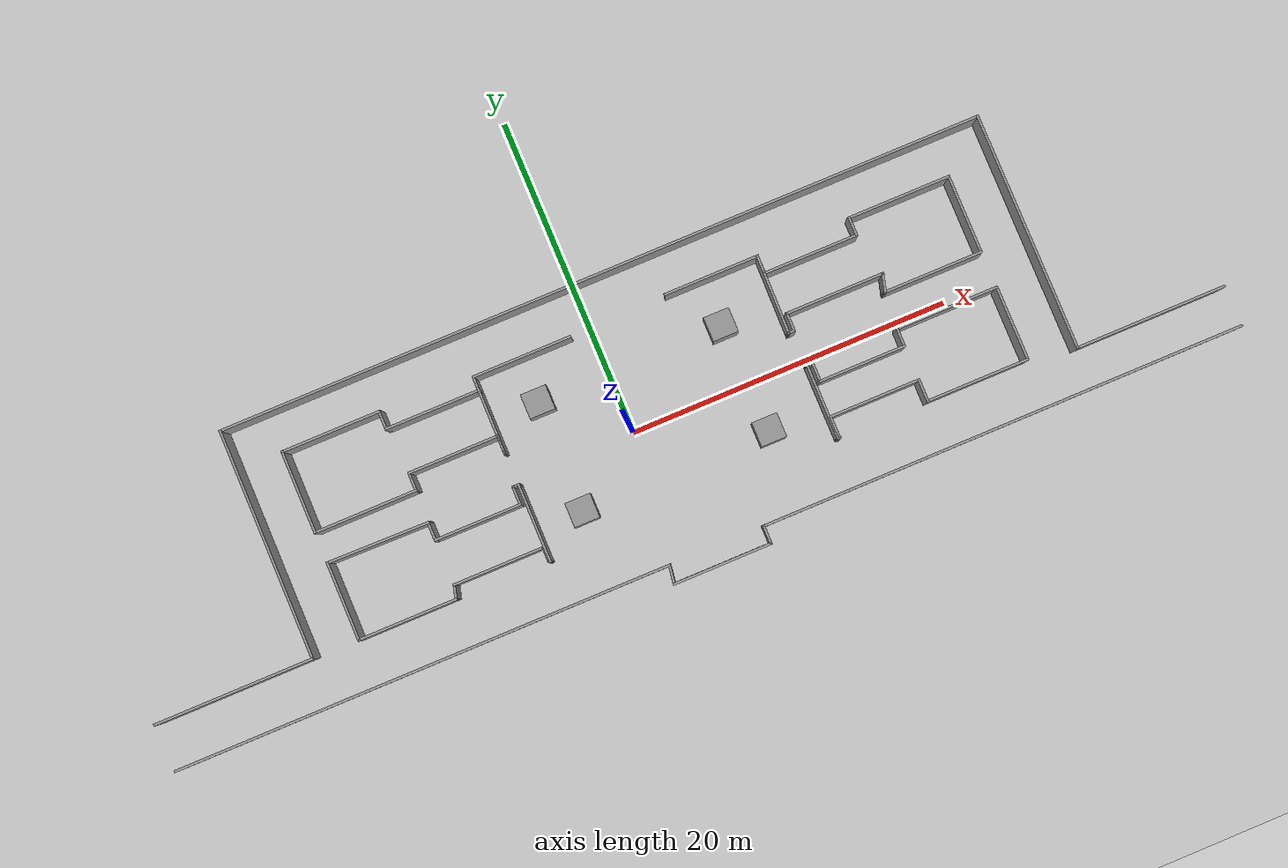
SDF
<sdf version="1.6">
 <world name="default">
  <light name="sun" type="directional">
   <pose>0 0 10 0 -0 0</pose>
   <diffuse>0.8 0.8 0.8 1</diffuse>
   <specular>0.2 0.2 0.2 1</specular>
   <attenuation>
    <range>1000</range>
    <constant>0.9</constant>
    <linear>0.01</linear>
    <quadratic>0.001</quadratic>
   </attenuation>
   <direction>-0.5 0.1 -0.9</direction>
  </light>
  <model name="ground_plane">
   <static>1</static>
   <link name="link">
    <collision name="collision">
     <geometry><plane><normal>0 0 1</normal><size>100 100</size></plane></geometry>
     <surface>
      <contact><collide_bitmask>65535</collide_bitmask></contact>
      <friction><ode><mu>100</mu><mu2>50</mu2></ode></friction>
     </surface>
    </collision>
    <visual name="visual">
     <cast_shadows>0</cast_shadows>
     <geometry><plane><normal>0 0 1</normal><size>100 100</size></plane></geometry>
     <material>
      <script><uri>file://media/materials/scripts/gazebo.material</uri><name>Gazebo/Grey</name></script>
     </material>
    </visual>
   </link>
  </model>
  <gravity>0 0 -9.8</gravity>
  <magnetic_field>6e-06 2.3e-05 -4.2e-05</magnetic_field>
  <atmosphere type="adiabatic"/>
  <physics name="default_physics" default="0" type="ode">
   <max_step_size>0.001</max_step_size>
   <real_time_factor>1</real_time_factor>
   <real_time_update_rate>1000</real_time_update_rate>
  </physics>
  <scene><ambient>0.4 0.4 0.4 1</ambient><background>0.7 0.7 0.7 1</background><shadows>1</shadows></scene>
  <audio><device>default</device></audio>
  <spherical_coordinates>
   <surface_model>EARTH_WGS84</surface_model>
   <latitude_deg>0</latitude_deg>
   <longitude_deg>0</longitude_deg>
   <elevation>0</elevation>
   <heading_deg>0</heading_deg>
  </spherical_coordinates>
  <model name="c5wall">
   <pose>1.5819 -0.00746 0 0 -0 0</pose>
   <link name="Wall_0">
    <collision name="Wall_0_Collision">
     <geometry><box><size>31.0745 0.15 2.5</size></box></geometry>
     <pose>0 0 1.25 0 -0 0</pose>
    </collision>
    <visual name="Wall_0_Visual">
     <pose>0 0 1.25 0 -0 0</pose>
     <geometry><box><size>31.0745 0.15 2.5</size></box></geometry>
     <material>
      <script><uri>file://media/materials/scripts/gazebo.material</uri><name>Gazebo/Grey</name></script>
      <ambient>1 1 1 1</ambient>
     </material>
     <meta><layer>0</layer></meta>
    </visual>
    <pose>-18.0912 -8.07962 0 0 -0 -0.00173</pose>
   </link>
   <link name="Wall_1">
    <collision name="Wall_1_Collision">
     <geometry><box><size>1.28496 0.15 2.5</size></box></geometry>
     <pose>0 0 1.25 0 -0 0</pose>
    </collision>
    <visual name="Wall_1_Visual">
     <pose>0 0 1.25 0 -0 0</pose>
     <geometry><box><size>1.28496 0.15 2.5</size></box></geometry>
     <material>
      <script><uri>file://media/materials/scripts/gazebo.material</uri><name>Gazebo/Grey</name></script>
      <ambient>1 1 1 1</ambient>
     </material>
     <meta><layer>0</layer></meta>
    </visual>
    <pose>-2.70927 -8.66814 0 0 -0 -1.71269</pose>
   </link>
   <link name="Wall_10">
    <collision name="Wall_10_Collision">
     <geometry><box><size>9.5 0.15 2.5</size></box></geometry>
     <pose>0 0 1.25 0 -0 0</pose>
    </collision>
    <visual name="Wall_10_Visual">
     <pose>0 0 1.25 0 -0 0</pose>
     <geometry><box><size>9.5 0.15 2.5</size></box></geometry>
     <material>
      <script><uri>file://media/materials/scripts/gazebo.material</uri><name>Gazebo/Grey</name></script>
      <ambient>1 1 1 1</ambient>
     </material>
     <meta><layer>0</layer></meta>
    </visual>
    <pose>28.9645 -5.61023 0 0 -0 0</pose>
   </link>
   <link name="Wall_12">
    <collision name="Wall_12_Collision">
     <geometry><box><size>6.25 0.15 2.5</size></box></geometry>
     <pose>0 0 1.25 0 -0 0</pose>
    </collision>
    <visual name="Wall_12_Visual">
     <pose>0 0 1.25 0 -0 0</pose>
     <geometry><box><size>6.25 0.15 2.5</size></box></geometry>
     <material>
      <script><uri>file://media/materials/scripts/gazebo.material</uri><name>Gazebo/Grey</name></script>
      <ambient>1 1 1 1</ambient>
     </material>
     <meta><layer>0</layer></meta>
    </visual>
    <pose>-17.8769 6.71382 0 0 -0 0</pose>
   </link>
   <link name="Wall_13">
    <collision name="Wall_13_Collision">
     <geometry><box><size>1.25 0.15 2.5</size></box></geometry>
     <pose>0 0 1.25 0 -0 0</pose>
    </collision>
    <visual name="Wall_13_Visual">
     <pose>0 0 1.25 0 -0 0</pose>
     <geometry><box><size>1.25 0.15 2.5</size></box></geometry>
     <material>
      <script><uri>file://media/materials/scripts/gazebo.material</uri><name>Gazebo/Grey</name></script>
      <ambient>1 1 1 1</ambient>
     </material>
     <meta><layer>0</layer></meta>
    </visual>
    <pose>-14.8269 6.16383 0 0 -0 -1.5708</pose>
   </link>
   <link name="Wall_14">
    <collision name="Wall_14_Collision">
     <geometry><box><size>6 0.15 2.5</size></box></geometry>
     <pose>0 0 1.25 0 -0 0</pose>
    </collision>
    <visual name="Wall_14_Visual">
     <pose>0 0 1.25 0 -0 0</pose>
     <geometry><box><size>6 0.15 2.5</size></box></geometry>
     <material>
      <script><uri>file://media/materials/scripts/gazebo.material</uri><name>Gazebo/Grey</name></script>
      <ambient>1 1 1 1</ambient>
     </material>
     <meta><layer>0</layer></meta>
    </visual>
    <pose>-11.9019 5.61383 0 0 -0 0</pose>
   </link>
   <link name="Wall_15">
    <collision name="Wall_15_Collision">
     <geometry><box><size>1 0.15 2.5</size></box></geometry>
     <pose>0 0 1.25 0 -0 0</pose>
    </collision>
    <visual name="Wall_15_Visual">
     <pose>0 0 1.25 0 -0 0</pose>
     <geometry><box><size>1 0.15 2.5</size></box></geometry>
     <material>
      <script><uri>file://media/materials/scripts/gazebo.material</uri><name>Gazebo/Grey</name></script>
      <ambient>1 1 1 1</ambient>
     </material>
     <meta><layer>0</layer></meta>
    </visual>
    <pose>-8.97688 6.03883 0 0 -0 1.5708</pose>
   </link>
   <link name="Wall_16">
    <collision name="Wall_16_Collision">
     <geometry><box><size>6.25 0.15 2.5</size></box></geometry>
     <pose>0 0 1.25 0 -0 0</pose>
    </collision>
    <visual name="Wall_16_Visual">
     <pose>0 0 1.25 0 -0 0</pose>
     <geometry><box><size>6.25 0.15 2.5</size></box></geometry>
     <material>
      <script><uri>file://media/materials/scripts/gazebo.material</uri><name>Gazebo/Grey</name></script>
      <ambient>1 1 1 1</ambient>
     </material>
     <meta><layer>0</layer></meta>
    </visual>
    <pose>-5.92688 6.46382 0 0 -0 0</pose>
   </link>
   <link name="Wall_18">
    <collision name="Wall_18_Collision">
     <geometry><box><size>6 0.15 2.5</size></box></geometry>
     <pose>0 0 1.25 0 -0 0</pose>
    </collision>
    <visual name="Wall_18_Visual">
     <pose>0 0 1.25 0 -0 0</pose>
     <geometry><box><size>6 0.15 2.5</size></box></geometry>
     <material>
      <script><uri>file://media/materials/scripts/gazebo.material</uri><name>Gazebo/Grey</name></script>
      <ambient>1 1 1 1</ambient>
     </material>
     <meta><layer>0</layer></meta>
    </visual>
    <pose>6.18126 6.60682 0 0 -0 0</pose>
   </link>
   <link name="Wall_19">
    <collision name="Wall_19_Collision">
     <geometry><box><size>1.25 0.15 2.5</size></box></geometry>
     <pose>0 0 1.25 0 -0 0</pose>
    </collision>
    <visual name="Wall_19_Visual">
     <pose>0 0 1.25 0 -0 0</pose>
     <geometry><box><size>1.25 0.15 2.5</size></box></geometry>
     <material>
      <script><uri>file://media/materials/scripts/gazebo.material</uri><name>Gazebo/Grey</name></script>
      <ambient>1 1 1 1</ambient>
     </material>
     <meta><layer>0</layer></meta>
    </visual>
    <pose>9.10626 6.05682 0 0 -0 -1.5708</pose>
   </link>
   <link name="Wall_2">
    <collision name="Wall_2_Collision">
     <geometry><box><size>6.25 0.15 2.5</size></box></geometry>
     <pose>0 0 1.25 0 -0 0</pose>
    </collision>
    <visual name="Wall_2_Visual">
     <pose>0 0 1.25 0 -0 0</pose>
     <geometry><box><size>6.25 0.15 2.5</size></box></geometry>
     <material>
      <script><uri>file://media/materials/scripts/gazebo.material</uri><name>Gazebo/Grey</name></script>
      <ambient>1 1 1 1</ambient>
     </material>
     <meta><layer>0</layer></meta>
    </visual>
    <pose>0.260472 -9.22992 0 0 -0 0</pose>
   </link>
   <link name="Wall_20">
    <collision name="Wall_20_Collision">
     <geometry><box><size>6 0.15 2.5</size></box></geometry>
     <pose>0 0 1.25 0 -0 0</pose>
    </collision>
    <visual name="Wall_20_Visual">
     <pose>0 0 1.25 0 -0 0</pose>
     <geometry><box><size>6 0.15 2.5</size></box></geometry>
     <material>
      <script><uri>file://media/materials/scripts/gazebo.material</uri><name>Gazebo/Grey</name></script>
      <ambient>1 1 1 1</ambient>
     </material>
     <meta><layer>0</layer></meta>
    </visual>
    <pose>12.0313 5.50682 0 0 -0 0</pose>
   </link>
   <link name="Wall_21">
    <collision name="Wall_21_Collision">
     <geometry><box><size>1.25 0.15 2.5</size></box></geometry>
     <pose>0 0 1.25 0 -0 0</pose>
    </collision>
    <visual name="Wall_21_Visual">
     <pose>0 0 1.25 0 -0 0</pose>
     <geometry><box><size>1.25 0.15 2.5</size></box></geometry>
     <material>
      <script><uri>file://media/materials/scripts/gazebo.material</uri><name>Gazebo/Grey</name></script>
      <ambient>1 1 1 1</ambient>
     </material>
     <meta><layer>0</layer></meta>
    </visual>
    <pose>14.9563 6.05682 0 0 -0 1.5708</pose>
   </link>
   <link name="Wall_22">
    <collision name="Wall_22_Collision">
     <geometry><box><size>6.5 0.15 2.5</size></box></geometry>
     <pose>0 0 1.25 0 -0 0</pose>
    </collision>
    <visual name="Wall_22_Visual">
     <pose>0 0 1.25 0 -0 0</pose>
     <geometry><box><size>6.5 0.15 2.5</size></box></geometry>
     <material>
      <script><uri>file://media/materials/scripts/gazebo.material</uri><name>Gazebo/Grey</name></script>
      <ambient>1 1 1 1</ambient>
     </material>
     <meta><layer>0</layer></meta>
    </visual>
    <pose>18.1313 6.60682 0 0 -0 0</pose>
   </link>
   <link name="Wall_23">
    <collision name="Wall_23_Collision">
     <geometry><box><size>5 0.15 2.5</size></box></geometry>
     <pose>0 0 1.25 0 -0 0</pose>
    </collision>
    <visual name="Wall_23_Visual">
     <pose>0 0 1.25 0 -0 0</pose>
     <geometry><box><size>5 0.15 2.5</size></box></geometry>
     <material>
      <script><uri>file://media/materials/scripts/gazebo.material</uri><name>Gazebo/Grey</name></script>
      <ambient>1 1 1 1</ambient>
     </material>
     <meta><layer>0</layer></meta>
    </visual>
    <pose>21.3063 4.18182 0 0 -0 -1.5708</pose>
   </link>
   <link name="Wall_24">
    <collision name="Wall_24_Collision">
     <geometry><box><size>6.25 0.15 2.5</size></box></geometry>
     <pose>0 0 1.25 0 -0 0</pose>
    </collision>
    <visual name="Wall_24_Visual">
     <pose>0 0 1.25 0 -0 0</pose>
     <geometry><box><size>6.25 0.15 2.5</size></box></geometry>
     <material>
      <script><uri>file://media/materials/scripts/gazebo.material</uri><name>Gazebo/Grey</name></script>
      <ambient>1 1 1 1</ambient>
     </material>
     <meta><layer>0</layer></meta>
    </visual>
    <pose>18.2563 1.75682 0 0 -0 3.14159</pose>
   </link>
   <link name="Wall_25">
    <collision name="Wall_25_Collision">
     <geometry><box><size>1.25 0.15 2.5</size></box></geometry>
     <pose>0 0 1.25 0 -0 0</pose>
    </collision>
    <visual name="Wall_25_Visual">
     <pose>0 0 1.25 0 -0 0</pose>
     <geometry><box><size>1.25 0.15 2.5</size></box></geometry>
     <material>
      <script><uri>file://media/materials/scripts/gazebo.material</uri><name>Gazebo/Grey</name></script>
      <ambient>1 1 1 1</ambient>
     </material>
     <meta><layer>0</layer></meta>
    </visual>
    <pose>15.3486 2.28808 0 0 -0 1.309</pose>
   </link>
   <link name="Wall_26">
    <collision name="Wall_26_Collision">
     <geometry><box><size>6.25 0.15 2.5</size></box></geometry>
     <pose>0 0 1.25 0 -0 0</pose>
    </collision>
    <visual name="Wall_26_Visual">
     <pose>0 0 1.25 0 -0 0</pose>
     <geometry><box><size>6.25 0.15 2.5</size></box></geometry>
     <material>
      <script><uri>file://media/materials/scripts/gazebo.material</uri><name>Gazebo/Grey</name></script>
      <ambient>1 1 1 1</ambient>
     </material>
     <meta><layer>0</layer></meta>
    </visual>
    <pose>12.441 2.81934 0 0 -0 3.14159</pose>
   </link>
   <link name="Wall_27">
    <collision name="Wall_27_Collision">
     <geometry><box><size>1.25 0.15 2.5</size></box></geometry>
     <pose>0 0 1.25 0 -0 0</pose>
    </collision>
    <visual name="Wall_27_Visual">
     <pose>0 0 1.25 0 -0 0</pose>
     <geometry><box><size>1.25 0.15 2.5</size></box></geometry>
     <material>
      <script><uri>file://media/materials/scripts/gazebo.material</uri><name>Gazebo/Grey</name></script>
      <ambient>1 1 1 1</ambient>
     </material>
     <meta><layer>0</layer></meta>
    </visual>
    <pose>9.39096 2.26934 0 0 -0 -1.5708</pose>
   </link>
   <link name="Wall_28">
    <collision name="Wall_28_Collision">
     <geometry><box><size>0.5 0.15 2.5</size></box></geometry>
     <pose>0 0 1.25 0 -0 0</pose>
    </collision>
    <visual name="Wall_28_Visual">
     <pose>0 0 1.25 0 -0 0</pose>
     <geometry><box><size>0.5 0.15 2.5</size></box></geometry>
     <material>
      <script><uri>file://media/materials/scripts/gazebo.material</uri><name>Gazebo/Grey</name></script>
      <ambient>1 1 1 1</ambient>
     </material>
     <meta><layer>0</layer></meta>
    </visual>
    <pose>9.21596 1.71934 0 0 -0 3.14159</pose>
   </link>
   <link name="Wall_29">
    <collision name="Wall_29_Collision">
     <geometry><box><size>5.03792 0.15 2.5</size></box></geometry>
     <pose>0 0 1.25 0 -0 0</pose>
    </collision>
    <visual name="Wall_29_Visual">
     <pose>0 0 1.25 0 -0 0</pose>
     <geometry><box><size>5.03792 0.15 2.5</size></box></geometry>
     <material>
      <script><uri>file://media/materials/scripts/gazebo.material</uri><name>Gazebo/Grey</name></script>
      <ambient>1 1 1 1</ambient>
     </material>
     <meta><layer>0</layer></meta>
    </visual>
    <pose>9.07361 4.16308 0 0 -0 1.55744</pose>
   </link>
   <link name="Wall_3">
    <collision name="Wall_3_Collision">
     <geometry><box><size>1.25 0.15 2.5</size></box></geometry>
     <pose>0 0 1.25 0 -0 0</pose>
    </collision>
    <visual name="Wall_3_Visual">
     <pose>0 0 1.25 0 -0 0</pose>
     <geometry><box><size>1.25 0.15 2.5</size></box></geometry>
     <material>
      <script><uri>file://media/materials/scripts/gazebo.material</uri><name>Gazebo/Grey</name></script>
      <ambient>1 1 1 1</ambient>
     </material>
     <meta><layer>0</layer></meta>
    </visual>
    <pose>3.31047 -8.67992 0 0 -0 1.5708</pose>
   </link>
   <link name="Wall_31">
    <collision name="Wall_31_Collision">
     <geometry><box><size>5.25 0.15 2.5</size></box></geometry>
     <pose>0 0 1.25 0 -0 0</pose>
    </collision>
    <visual name="Wall_31_Visual">
     <pose>0 0 1.25 0 -0 0</pose>
     <geometry><box><size>5.25 0.15 2.5</size></box></geometry>
     <material>
      <script><uri>file://media/materials/scripts/gazebo.material</uri><name>Gazebo/Grey</name></script>
      <ambient>1 1 1 1</ambient>
     </material>
     <meta><layer>0</layer></meta>
    </visual>
    <pose>-20.9269 4.16383 0 0 -0 -1.5708</pose>
   </link>
   <link name="Wall_32">
    <collision name="Wall_32_Collision">
     <geometry><box><size>6.5 0.15 2.5</size></box></geometry>
     <pose>0 0 1.25 0 -0 0</pose>
    </collision>
    <visual name="Wall_32_Visual">
     <pose>0 0 1.25 0 -0 0</pose>
     <geometry><box><size>6.5 0.15 2.5</size></box></geometry>
     <material>
      <script><uri>file://media/materials/scripts/gazebo.material</uri><name>Gazebo/Grey</name></script>
      <ambient>1 1 1 1</ambient>
     </material>
     <meta><layer>0</layer></meta>
    </visual>
    <pose>-17.7519 1.61383 0 0 -0 0</pose>
   </link>
   <link name="Wall_33">
    <collision name="Wall_33_Collision">
     <geometry><box><size>1.25 0.15 2.5</size></box></geometry>
     <pose>0 0 1.25 0 -0 0</pose>
    </collision>
    <visual name="Wall_33_Visual">
     <pose>0 0 1.25 0 -0 0</pose>
     <geometry><box><size>1.25 0.15 2.5</size></box></geometry>
     <material>
      <script><uri>file://media/materials/scripts/gazebo.material</uri><name>Gazebo/Grey</name></script>
      <ambient>1 1 1 1</ambient>
     </material>
     <meta><layer>0</layer></meta>
    </visual>
    <pose>-14.5769 2.16383 0 0 -0 1.5708</pose>
   </link>
   <link name="Wall_34">
    <collision name="Wall_34_Collision">
     <geometry><box><size>5.75 0.15 2.5</size></box></geometry>
     <pose>0 0 1.25 0 -0 0</pose>
    </collision>
    <visual name="Wall_34_Visual">
     <pose>0 0 1.25 0 -0 0</pose>
     <geometry><box><size>5.75 0.15 2.5</size></box></geometry>
     <material>
      <script><uri>file://media/materials/scripts/gazebo.material</uri><name>Gazebo/Grey</name></script>
      <ambient>1 1 1 1</ambient>
     </material>
     <meta><layer>0</layer></meta>
    </visual>
    <pose>-11.7769 2.71382 0 0 -0 0</pose>
   </link>
   <link name="Wall_35">
    <collision name="Wall_35_Collision">
     <geometry><box><size>1.25 0.15 2.5</size></box></geometry>
     <pose>0 0 1.25 0 -0 0</pose>
    </collision>
    <visual name="Wall_35_Visual">
     <pose>0 0 1.25 0 -0 0</pose>
     <geometry><box><size>1.25 0.15 2.5</size></box></geometry>
     <material>
      <script><uri>file://media/materials/scripts/gazebo.material</uri><name>Gazebo/Grey</name></script>
      <ambient>1 1 1 1</ambient>
     </material>
     <meta><layer>0</layer></meta>
    </visual>
    <pose>-8.97688 2.16383 0 0 -0 -1.5708</pose>
   </link>
   <link name="Wall_36">
    <collision name="Wall_36_Collision">
     <geometry><box><size>0.15 0.15 2.5</size></box></geometry>
     <pose>0 0 1.25 0 -0 0</pose>
    </collision>
    <visual name="Wall_36_Visual">
     <pose>0 0 1.25 0 -0 0</pose>
     <geometry><box><size>0.15 0.15 2.5</size></box></geometry>
     <material>
      <script><uri>file://media/materials/scripts/gazebo.material</uri><name>Gazebo/Grey</name></script>
      <ambient>1 1 1 1</ambient>
     </material>
     <meta><layer>0</layer></meta>
    </visual>
    <pose>-8.97688 1.61383 0 0 -0 0</pose>
   </link>
   <link name="Wall_37">
    <collision name="Wall_37_Collision">
     <geometry><box><size>5 0.15 2.5</size></box></geometry>
     <pose>0 0 1.25 0 -0 0</pose>
    </collision>
    <visual name="Wall_37_Visual">
     <pose>0 0 1.25 0 -0 0</pose>
     <geometry><box><size>5 0.15 2.5</size></box></geometry>
     <material>
      <script><uri>file://media/materials/scripts/gazebo.material</uri><name>Gazebo/Grey</name></script>
      <ambient>1 1 1 1</ambient>
     </material>
     <meta><layer>0</layer></meta>
    </visual>
    <pose>-8.97688 4.03883 0 0 -0 1.5708</pose>
   </link>
   <link name="Wall_39">
    <collision name="Wall_39_Collision">
     <geometry><box><size>5 0.15 2.5</size></box></geometry>
     <pose>0 0 1.25 0 -0 0</pose>
    </collision>
    <visual name="Wall_39_Visual">
     <pose>0 0 1.25 0 -0 0</pose>
     <geometry><box><size>5 0.15 2.5</size></box></geometry>
     <material>
      <script><uri>file://media/materials/scripts/gazebo.material</uri><name>Gazebo/Grey</name></script>
      <ambient>1 1 1 1</ambient>
     </material>
     <meta><layer>0</layer></meta>
    </visual>
    <pose>-20.9269 -2.72 0 0 -0 -1.5708</pose>
   </link>
   <link name="Wall_4">
    <collision name="Wall_4_Collision">
     <geometry><box><size>30.5 0.15 2.5</size></box></geometry>
     <pose>0 0 1.25 0 -0 0</pose>
    </collision>
    <visual name="Wall_4_Visual">
     <pose>0 0 1.25 0 -0 0</pose>
     <geometry><box><size>30.5 0.15 2.5</size></box></geometry>
     <material>
      <script><uri>file://media/materials/scripts/gazebo.material</uri><name>Gazebo/Grey</name></script>
      <ambient>1 1 1 1</ambient>
     </material>
     <meta><layer>0</layer></meta>
    </visual>
    <pose>18.4855 -8.12992 0 0 -0 0</pose>
   </link>
   <link name="Wall_40">
    <collision name="Wall_40_Collision">
     <geometry><box><size>6.25 0.15 2.5</size></box></geometry>
     <pose>0 0 1.25 0 -0 0</pose>
    </collision>
    <visual name="Wall_40_Visual">
     <pose>0 0 1.25 0 -0 0</pose>
     <geometry><box><size>6.25 0.15 2.5</size></box></geometry>
     <material>
      <script><uri>file://media/materials/scripts/gazebo.material</uri><name>Gazebo/Grey</name></script>
      <ambient>1 1 1 1</ambient>
     </material>
     <meta><layer>0</layer></meta>
    </visual>
    <pose>-17.8769 -5.145 0 0 -0 0</pose>
   </link>
   <link name="Wall_41">
    <collision name="Wall_41_Collision">
     <geometry><box><size>1 0.15 2.5</size></box></geometry>
     <pose>0 0 1.25 0 -0 0</pose>
    </collision>
    <visual name="Wall_41_Visual">
     <pose>0 0 1.25 0 -0 0</pose>
     <geometry><box><size>1 0.15 2.5</size></box></geometry>
     <material>
      <script><uri>file://media/materials/scripts/gazebo.material</uri><name>Gazebo/Grey</name></script>
      <ambient>1 1 1 1</ambient>
     </material>
     <meta><layer>0</layer></meta>
    </visual>
    <pose>-14.7169 -4.73448 0 0 -0 1.309</pose>
   </link>
   <link name="Wall_42">
    <collision name="Wall_42_Collision">
     <geometry><box><size>5.75 0.15 2.5</size></box></geometry>
     <pose>0 0 1.25 0 -0 0</pose>
    </collision>
    <visual name="Wall_42_Visual">
     <pose>0 0 1.25 0 -0 0</pose>
     <geometry><box><size>5.75 0.15 2.5</size></box></geometry>
     <material>
      <script><uri>file://media/materials/scripts/gazebo.material</uri><name>Gazebo/Grey</name></script>
      <ambient>1 1 1 1</ambient>
     </material>
     <meta><layer>0</layer></meta>
    </visual>
    <pose>-11.8069 -4.32397 0 0 -0 0</pose>
   </link>
   <link name="Wall_43">
    <collision name="Wall_43_Collision">
     <geometry><box><size>1 0.15 2.5</size></box></geometry>
     <pose>0 0 1.25 0 -0 0</pose>
    </collision>
    <visual name="Wall_43_Visual">
     <pose>0 0 1.25 0 -0 0</pose>
     <geometry><box><size>1 0.15 2.5</size></box></geometry>
     <material>
      <script><uri>file://media/materials/scripts/gazebo.material</uri><name>Gazebo/Grey</name></script>
      <ambient>1 1 1 1</ambient>
     </material>
     <meta><layer>0</layer></meta>
    </visual>
    <pose>-9.00688 -4.74897 0 0 -0 -1.5708</pose>
   </link>
   <link name="Wall_44">
    <collision name="Wall_44_Collision">
     <geometry><box><size>0.25 0.15 2.5</size></box></geometry>
     <pose>0 0 1.25 0 -0 0</pose>
    </collision>
    <visual name="Wall_44_Visual">
     <pose>0 0 1.25 0 -0 0</pose>
     <geometry><box><size>0.25 0.15 2.5</size></box></geometry>
     <material>
      <script><uri>file://media/materials/scripts/gazebo.material</uri><name>Gazebo/Grey</name></script>
      <ambient>1 1 1 1</ambient>
     </material>
     <meta><layer>0</layer></meta>
    </visual>
    <pose>-8.97152 -5.20932 0 0 -0 -0.785398</pose>
   </link>
   <link name="Wall_45">
    <collision name="Wall_45_Collision">
     <geometry><box><size>5 0.15 2.5</size></box></geometry>
     <pose>0 0 1.25 0 -0 0</pose>
    </collision>
    <visual name="Wall_45_Visual">
     <pose>0 0 1.25 0 -0 0</pose>
     <geometry><box><size>5 0.15 2.5</size></box></geometry>
     <material>
      <script><uri>file://media/materials/scripts/gazebo.material</uri><name>Gazebo/Grey</name></script>
      <ambient>1 1 1 1</ambient>
     </material>
     <meta><layer>0</layer></meta>
    </visual>
    <pose>-8.93617 -2.81968 0 0 -0 1.5708</pose>
   </link>
   <link name="Wall_46">
    <collision name="Wall_46_Collision">
     <geometry><box><size>0.5 0.15 2.5</size></box></geometry>
     <pose>0 0 1.25 0 -0 0</pose>
    </collision>
    <visual name="Wall_46_Visual">
     <pose>0 0 1.25 0 -0 0</pose>
     <geometry><box><size>0.5 0.15 2.5</size></box></geometry>
     <material>
      <script><uri>file://media/materials/scripts/gazebo.material</uri><name>Gazebo/Grey</name></script>
      <ambient>1 1 1 1</ambient>
     </material>
     <meta><layer>0</layer></meta>
    </visual>
    <pose>-9.11117 -0.394676 0 0 -0 3.14159</pose>
   </link>
   <link name="Wall_47">
    <collision name="Wall_47_Collision">
     <geometry><box><size>1.25 0.15 2.5</size></box></geometry>
     <pose>0 0 1.25 0 -0 0</pose>
    </collision>
    <visual name="Wall_47_Visual">
     <pose>0 0 1.25 0 -0 0</pose>
     <geometry><box><size>1.25 0.15 2.5</size></box></geometry>
     <material>
      <script><uri>file://media/materials/scripts/gazebo.material</uri><name>Gazebo/Grey</name></script>
      <ambient>1 1 1 1</ambient>
     </material>
     <meta><layer>0</layer></meta>
    </visual>
    <pose>-9.28617 -0.944676 0 0 -0 -1.5708</pose>
   </link>
   <link name="Wall_48">
    <collision name="Wall_48_Collision">
     <geometry><box><size>5.5 0.15 2.5</size></box></geometry>
     <pose>0 0 1.25 0 -0 0</pose>
    </collision>
    <visual name="Wall_48_Visual">
     <pose>0 0 1.25 0 -0 0</pose>
     <geometry><box><size>5.5 0.15 2.5</size></box></geometry>
     <material>
      <script><uri>file://media/materials/scripts/gazebo.material</uri><name>Gazebo/Grey</name></script>
      <ambient>1 1 1 1</ambient>
     </material>
     <meta><layer>0</layer></meta>
    </visual>
    <pose>-11.9612 -1.49468 0 0 -0 3.14159</pose>
   </link>
   <link name="Wall_49">
    <collision name="Wall_49_Collision">
     <geometry><box><size>1.25 0.15 2.5</size></box></geometry>
     <pose>0 0 1.25 0 -0 0</pose>
    </collision>
    <visual name="Wall_49_Visual">
     <pose>0 0 1.25 0 -0 0</pose>
     <geometry><box><size>1.25 0.15 2.5</size></box></geometry>
     <material>
      <script><uri>file://media/materials/scripts/gazebo.material</uri><name>Gazebo/Grey</name></script>
      <ambient>1 1 1 1</ambient>
     </material>
     <meta><layer>0</layer></meta>
    </visual>
    <pose>-14.6362 -0.944676 0 0 -0 1.5708</pose>
   </link>
   <link name="Wall_50">
    <collision name="Wall_50_Collision">
     <geometry><box><size>6.4415 0.15 2.5</size></box></geometry>
     <pose>0 0 1.25 0 -0 0</pose>
    </collision>
    <visual name="Wall_50_Visual">
     <pose>0 0 1.25 0 -0 0</pose>
     <geometry><box><size>6.4415 0.15 2.5</size></box></geometry>
     <material>
      <script><uri>file://media/materials/scripts/gazebo.material</uri><name>Gazebo/Grey</name></script>
      <ambient>1 1 1 1</ambient>
     </material>
     <meta><layer>0</layer></meta>
    </visual>
    <pose>-17.7815 -0.34484 0 0 -0 3.12575</pose>
   </link>
   <link name="Wall_53">
    <collision name="Wall_53_Collision">
     <geometry><box><size>4.75 0.15 2.5</size></box></geometry>
     <pose>0 0 1.25 0 -0 0</pose>
    </collision>
    <visual name="Wall_53_Visual">
     <pose>0 0 1.25 0 -0 0</pose>
     <geometry><box><size>4.75 0.15 2.5</size></box></geometry>
     <material>
      <script><uri>file://media/materials/scripts/gazebo.material</uri><name>Gazebo/Grey</name></script>
      <ambient>1 1 1 1</ambient>
     </material>
     <meta><layer>0</layer></meta>
    </visual>
    <pose>9.30204 -2.75551 0 0 -0 -1.5708</pose>
   </link>
   <link name="Wall_54">
    <collision name="Wall_54_Collision">
     <geometry><box><size>0.25 0.15 2.5</size></box></geometry>
     <pose>0 0 1.25 0 -0 0</pose>
    </collision>
    <visual name="Wall_54_Visual">
     <pose>0 0 1.25 0 -0 0</pose>
     <geometry><box><size>0.25 0.15 2.5</size></box></geometry>
     <material>
      <script><uri>file://media/materials/scripts/gazebo.material</uri><name>Gazebo/Grey</name></script>
      <ambient>1 1 1 1</ambient>
     </material>
     <meta><layer>0</layer></meta>
    </visual>
    <pose>9.34534 -5.08051 0 0 -0 -0.523599</pose>
   </link>
   <link name="Wall_55">
    <collision name="Wall_55_Collision">
     <geometry><box><size>1.5 0.15 2.5</size></box></geometry>
     <pose>0 0 1.25 0 -0 0</pose>
    </collision>
    <visual name="Wall_55_Visual">
     <pose>0 0 1.25 0 -0 0</pose>
     <geometry><box><size>1.5 0.15 2.5</size></box></geometry>
     <material>
      <script><uri>file://media/materials/scripts/gazebo.material</uri><name>Gazebo/Grey</name></script>
      <ambient>1 1 1 1</ambient>
     </material>
     <meta><layer>0</layer></meta>
    </visual>
    <pose>9.38864 -4.43051 0 0 -0 1.5708</pose>
   </link>
   <link name="Wall_56">
    <collision name="Wall_56_Collision">
     <geometry><box><size>5.75 0.15 2.5</size></box></geometry>
     <pose>0 0 1.25 0 -0 0</pose>
    </collision>
    <visual name="Wall_56_Visual">
     <pose>0 0 1.25 0 -0 0</pose>
     <geometry><box><size>5.75 0.15 2.5</size></box></geometry>
     <material>
      <script><uri>file://media/materials/scripts/gazebo.material</uri><name>Gazebo/Grey</name></script>
      <ambient>1 1 1 1</ambient>
     </material>
     <meta><layer>0</layer></meta>
    </visual>
    <pose>12.1886 -3.75551 0 0 -0 0</pose>
   </link>
   <link name="Wall_57">
    <collision name="Wall_57_Collision">
     <geometry><box><size>1.5 0.15 2.5</size></box></geometry>
     <pose>0 0 1.25 0 -0 0</pose>
    </collision>
    <visual name="Wall_57_Visual">
     <pose>0 0 1.25 0 -0 0</pose>
     <geometry><box><size>1.5 0.15 2.5</size></box></geometry>
     <material>
      <script><uri>file://media/materials/scripts/gazebo.material</uri><name>Gazebo/Grey</name></script>
      <ambient>1 1 1 1</ambient>
     </material>
     <meta><layer>0</layer></meta>
    </visual>
    <pose>14.9886 -4.43051 0 0 -0 -1.5708</pose>
   </link>
   <link name="Wall_58">
    <collision name="Wall_58_Collision">
     <geometry><box><size>6.5 0.15 2.5</size></box></geometry>
     <pose>0 0 1.25 0 -0 0</pose>
    </collision>
    <visual name="Wall_58_Visual">
     <pose>0 0 1.25 0 -0 0</pose>
     <geometry><box><size>6.5 0.15 2.5</size></box></geometry>
     <material>
      <script><uri>file://media/materials/scripts/gazebo.material</uri><name>Gazebo/Grey</name></script>
      <ambient>1 1 1 1</ambient>
     </material>
     <meta><layer>0</layer></meta>
    </visual>
    <pose>18.1636 -5.10551 0 0 -0 0</pose>
   </link>
   <link name="Wall_59">
    <collision name="Wall_59_Collision">
     <geometry><box><size>4.75 0.15 2.5</size></box></geometry>
     <pose>0 0 1.25 0 -0 0</pose>
    </collision>
    <visual name="Wall_59_Visual">
     <pose>0 0 1.25 0 -0 0</pose>
     <geometry><box><size>4.75 0.15 2.5</size></box></geometry>
     <material>
      <script><uri>file://media/materials/scripts/gazebo.material</uri><name>Gazebo/Grey</name></script>
      <ambient>1 1 1 1</ambient>
     </material>
     <meta><layer>0</layer></meta>
    </visual>
    <pose>21.3386 -2.80551 0 0 -0 1.5708</pose>
   </link>
   <link name="Wall_6">
    <collision name="Wall_6_Collision">
     <geometry><box><size>10 0.15 2.5</size></box></geometry>
     <pose>0 0 1.25 0 -0 0</pose>
    </collision>
    <visual name="Wall_6_Visual">
     <pose>0 0 1.25 0 -0 0</pose>
     <geometry><box><size>10 0.15 2.5</size></box></geometry>
     <material>
      <script><uri>file://media/materials/scripts/gazebo.material</uri><name>Gazebo/Grey</name></script>
      <ambient>1 1 1 1</ambient>
     </material>
     <meta><layer>0</layer></meta>
    </visual>
    <pose>-28.7355 -5.11023 0 0 -0 0</pose>
   </link>
   <link name="Wall_60">
    <collision name="Wall_60_Collision">
     <geometry><box><size>6.5 0.15 2.5</size></box></geometry>
     <pose>0 0 1.25 0 -0 0</pose>
    </collision>
    <visual name="Wall_60_Visual">
     <pose>0 0 1.25 0 -0 0</pose>
     <geometry><box><size>6.5 0.15 2.5</size></box></geometry>
     <material>
      <script><uri>file://media/materials/scripts/gazebo.material</uri><name>Gazebo/Grey</name></script>
      <ambient>1 1 1 1</ambient>
     </material>
     <meta><layer>0</layer></meta>
    </visual>
    <pose>18.1636 -0.50551 0 0 -0 3.14159</pose>
   </link>
   <link name="Wall_61">
    <collision name="Wall_61_Collision">
     <geometry><box><size>1.25 0.15 2.5</size></box></geometry>
     <pose>0 0 1.25 0 -0 0</pose>
    </collision>
    <visual name="Wall_61_Visual">
     <pose>0 0 1.25 0 -0 0</pose>
     <geometry><box><size>1.25 0.15 2.5</size></box></geometry>
     <material>
      <script><uri>file://media/materials/scripts/gazebo.material</uri><name>Gazebo/Grey</name></script>
      <ambient>1 1 1 1</ambient>
     </material>
     <meta><layer>0</layer></meta>
    </visual>
    <pose>14.9886 -1.05551 0 0 -0 -1.5708</pose>
   </link>
   <link name="Wall_62">
    <collision name="Wall_62_Collision">
     <geometry><box><size>5.5 0.15 2.5</size></box></geometry>
     <pose>0 0 1.25 0 -0 0</pose>
    </collision>
    <visual name="Wall_62_Visual">
     <pose>0 0 1.25 0 -0 0</pose>
     <geometry><box><size>5.5 0.15 2.5</size></box></geometry>
     <material>
      <script><uri>file://media/materials/scripts/gazebo.material</uri><name>Gazebo/Grey</name></script>
      <ambient>1 1 1 1</ambient>
     </material>
     <meta><layer>0</layer></meta>
    </visual>
    <pose>12.3136 -1.60551 0 0 -0 3.14159</pose>
   </link>
   <link name="Wall_63">
    <collision name="Wall_63_Collision">
     <geometry><box><size>1.25 0.15 2.5</size></box></geometry>
     <pose>0 0 1.25 0 -0 0</pose>
    </collision>
    <visual name="Wall_63_Visual">
     <pose>0 0 1.25 0 -0 0</pose>
     <geometry><box><size>1.25 0.15 2.5</size></box></geometry>
     <material>
      <script><uri>file://media/materials/scripts/gazebo.material</uri><name>Gazebo/Grey</name></script>
      <ambient>1 1 1 1</ambient>
     </material>
     <meta><layer>0</layer></meta>
    </visual>
    <pose>9.63864 -1.05551 0 0 -0 1.5708</pose>
   </link>
   <link name="Wall_65">
    <collision name="Wall_65_Collision">
     <geometry><box><size>0.490296 0.15 2.5</size></box></geometry>
     <pose>0 0 1.25 0 -0 0</pose>
    </collision>
    <visual name="Wall_65_Visual">
     <pose>0 0 1.25 0 -0 0</pose>
     <geometry><box><size>0.490296 0.15 2.5</size></box></geometry>
     <material>
      <script><uri>file://media/materials/scripts/gazebo.material</uri><name>Gazebo/Grey</name></script>
      <ambient>1 1 1 1</ambient>
     </material>
     <meta><layer>0</layer></meta>
    </visual>
    <pose>9.47034 -0.48051 0 0 -0 -0.147465</pose>
   </link>
   <link name="Wall_7">
    <collision name="Wall_7_Collision">
     <geometry><box><size>14.5 0.15 2.5</size></box></geometry>
     <pose>0 0 1.25 0 -0 0</pose>
    </collision>
    <visual name="Wall_7_Visual">
     <pose>0 0 1.25 0 -0 0</pose>
     <geometry><box><size>14.5 0.15 2.5</size></box></geometry>
     <material>
      <script><uri>file://media/materials/scripts/gazebo.material</uri><name>Gazebo/Grey</name></script>
      <ambient>1 1 1 1</ambient>
     </material>
     <meta><layer>0</layer></meta>
    </visual>
    <pose>-23.8105 2.06477 0 0 -0 1.5708</pose>
   </link>
   <link name="Wall_8">
    <collision name="Wall_8_Collision">
     <geometry><box><size>48.25 0.15 2.5</size></box></geometry>
     <pose>0 0 1.25 0 -0 0</pose>
    </collision>
    <visual name="Wall_8_Visual">
     <pose>0 0 1.25 0 -0 0</pose>
     <geometry><box><size>48.25 0.15 2.5</size></box></geometry>
     <material>
      <script><uri>file://media/materials/scripts/gazebo.material</uri><name>Gazebo/Grey</name></script>
      <ambient>1 1 1 1</ambient>
     </material>
     <meta><layer>0</layer></meta>
    </visual>
    <pose>0.239529 9.23977 0 0 -0 0</pose>
   </link>
   <link name="Wall_9">
    <collision name="Wall_9_Collision">
     <geometry><box><size>15 0.15 2.5</size></box></geometry>
     <pose>0 0 1.25 0 -0 0</pose>
    </collision>
    <visual name="Wall_9_Visual">
     <pose>0 0 1.25 0 -0 0</pose>
     <geometry><box><size>15 0.15 2.5</size></box></geometry>
     <material>
      <script><uri>file://media/materials/scripts/gazebo.material</uri><name>Gazebo/Grey</name></script>
      <ambient>1 1 1 1</ambient>
     </material>
     <meta><layer>0</layer></meta>
    </visual>
    <pose>24.2895 1.81477 0 0 -0 -1.5708</pose>
   </link>
   <static>1</static>
  </model>
  <model name="unit_box">
   <pose>-4.48993 3.70309 0.9892 0 1e-06 -0.000333</pose>
   <link name="link">
    <inertial>
     <mass>1</mass>
     <inertia>
      <ixx>0.166667</ixx>
      <ixy>0</ixy>
      <ixz>0</ixz>
      <iyy>0.166667</iyy>
      <iyz>0</iyz>
      <izz>0.166667</izz>
     </inertia>
    </inertial>
    <collision name="collision"><geometry><box><size>1.60109 1.53697 1.9784</size></box></geometry></collision>
    <visual name="visual">
     <geometry><box><size>1.60109 1.53697 1.9784</size></box></geometry>
     <material>
      <script><name>Gazebo/Grey</name><uri>file://media/materials/scripts/gazebo.material</uri></script>
     </material>
    </visual>
   </link>
  </model>
  <model name="unit_box_clone">
   <pose>-4.52032 -3.18996 0.989196 0 -5e-06 -0.000333</pose>
   <link name="link">
    <inertial>
     <mass>1</mass>
     <inertia>
      <ixx>0.166667</ixx>
      <ixy>0</ixy>
      <ixz>0</ixz>
      <iyy>0.166667</iyy>
      <iyz>0</iyz>
      <izz>0.166667</izz>
     </inertia>
    </inertial>
    <collision name="collision"><geometry><box><size>1.60109 1.53697 1.9784</size></box></geometry></collision>
    <visual name="visual">
     <geometry><box><size>1.60109 1.53697 1.9784</size></box></geometry>
     <material>
      <script><name>Gazebo/Grey</name><uri>file://media/materials/scripts/gazebo.material</uri></script>
     </material>
    </visual>
   </link>
  </model>
  <model name="unit_box_clone_clone">
   <pose>7.39445 -3.05512 0.9892 -0 -1e-06 -0.000333</pose>
   <link name="link">
    <inertial>
     <mass>1</mass>
     <inertia>
      <ixx>0.166667</ixx>
      <ixy>0</ixy>
      <ixz>0</ixz>
      <iyy>0.166667</iyy>
      <iyz>0</iyz>
      <izz>0.166667</izz>
     </inertia>
    </inertial>
    <collision name="collision"><geometry><box><size>1.60109 1.53697 1.9784</size></box></geometry></collision>
    <visual name="visual">
     <geometry><box><size>1.60109 1.53697 1.9784</size></box></geometry>
     <material>
      <script><name>Gazebo/Grey</name><uri>file://media/materials/scripts/gazebo.material</uri></script>
     </material>
    </visual>
   </link>
  </model>
  <model name="unit_box_clone_clone_clone">
   <pose>7.18293 3.75013 0.989196 0 -5e-06 -0.000333</pose>
   <link name="link">
    <inertial>
     <mass>1</mass>
     <inertia>
      <ixx>0.166667</ixx>
      <ixy>0</ixy>
      <ixz>0</ixz>
      <iyy>0.166667</iyy>
      <iyz>0</iyz>
      <izz>0.166667</izz>
     </inertia>
    </inertial>
    <collision name="collision"><geometry><box><size>1.60109 1.53697 1.9784</size></box></geometry></collision>
    <visual name="visual">
     <geometry><box><size>1.60109 1.53697 1.9784</size></box></geometry>
     <material>
      <script><name>Gazebo/Grey</name><uri>file://media/materials/scripts/gazebo.material</uri></script>
     </material>
    </visual>
   </link>
  </model>
 </world>
</sdf>
